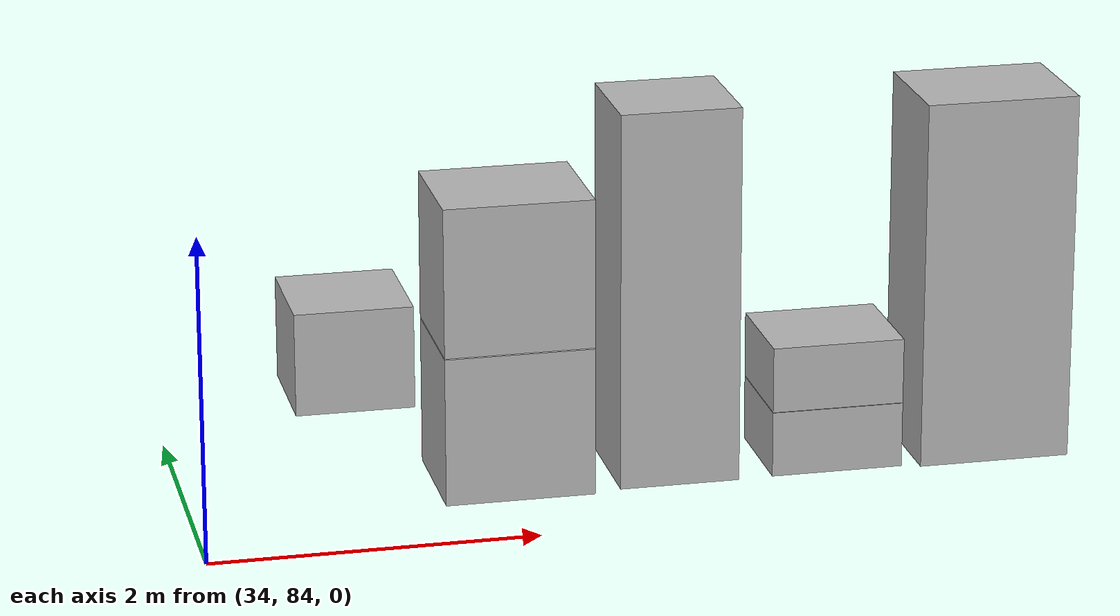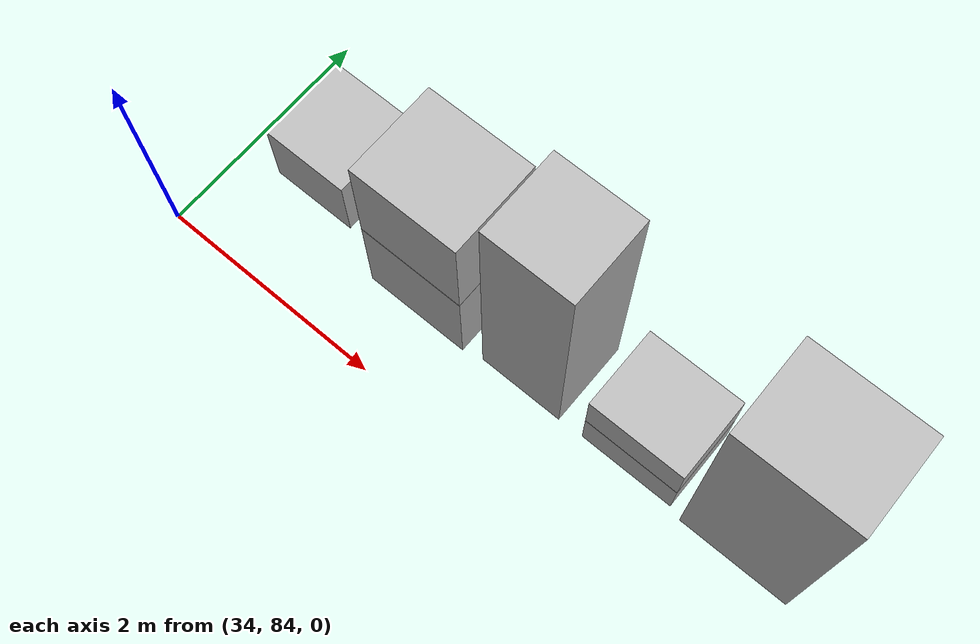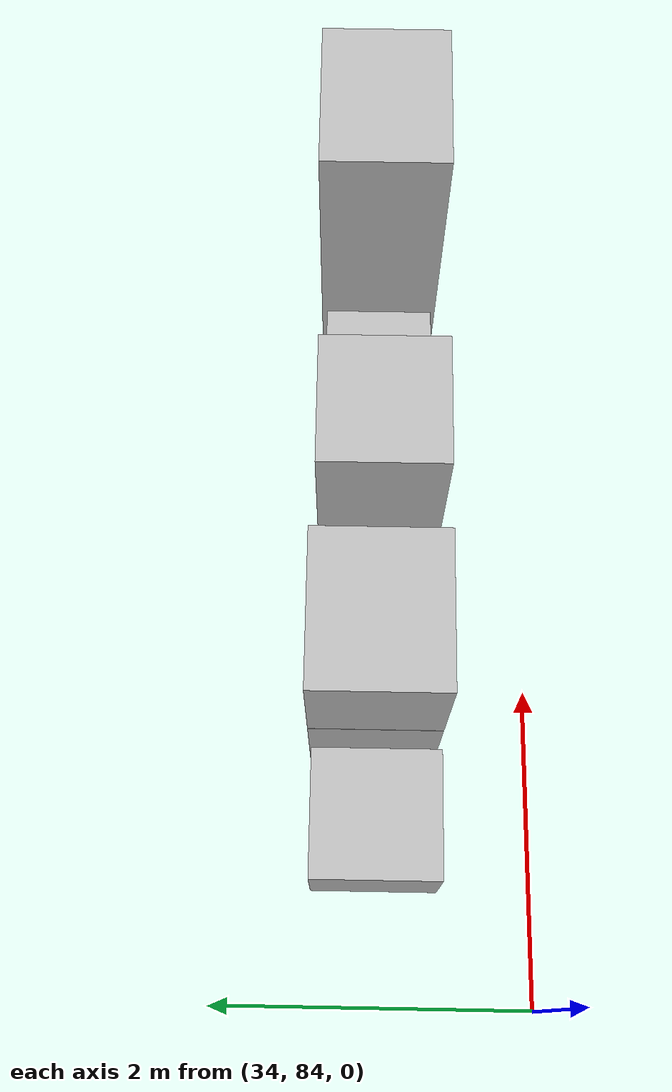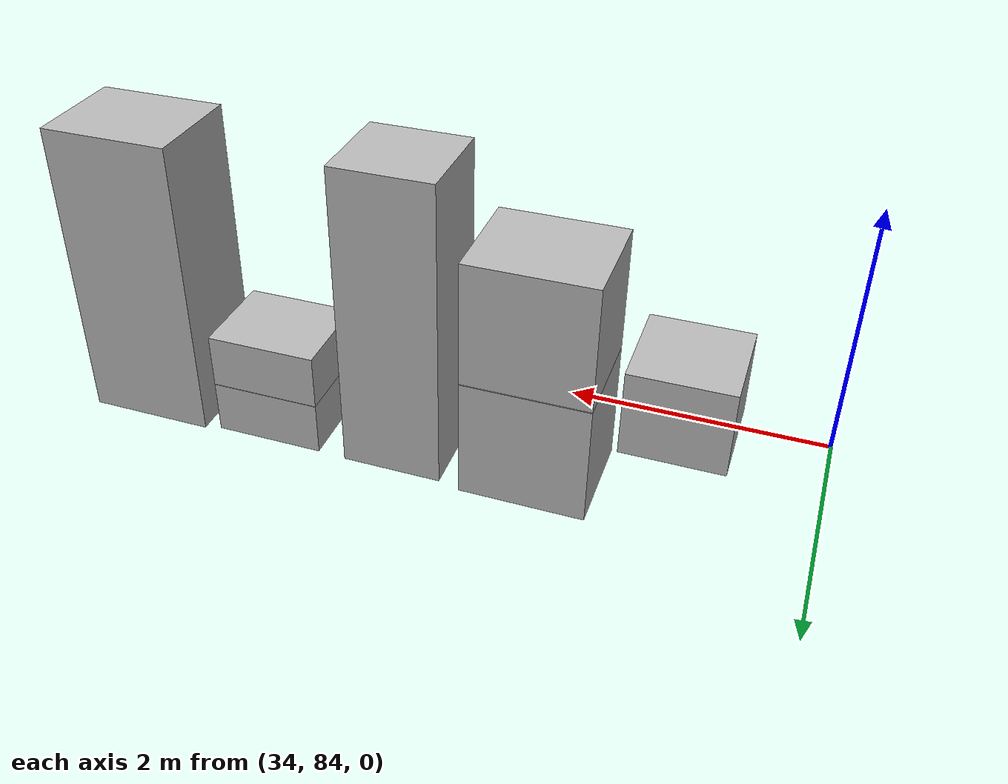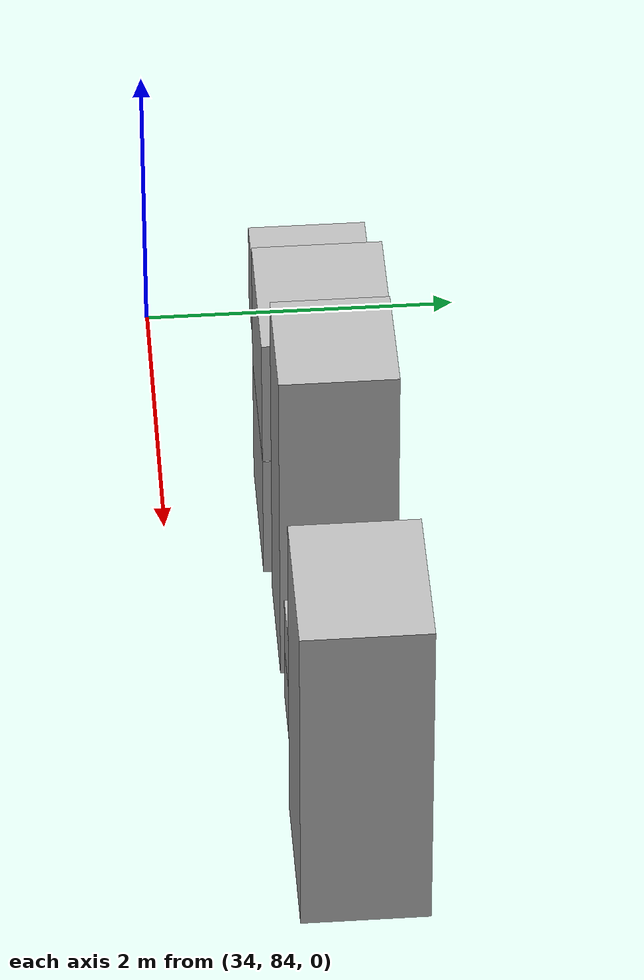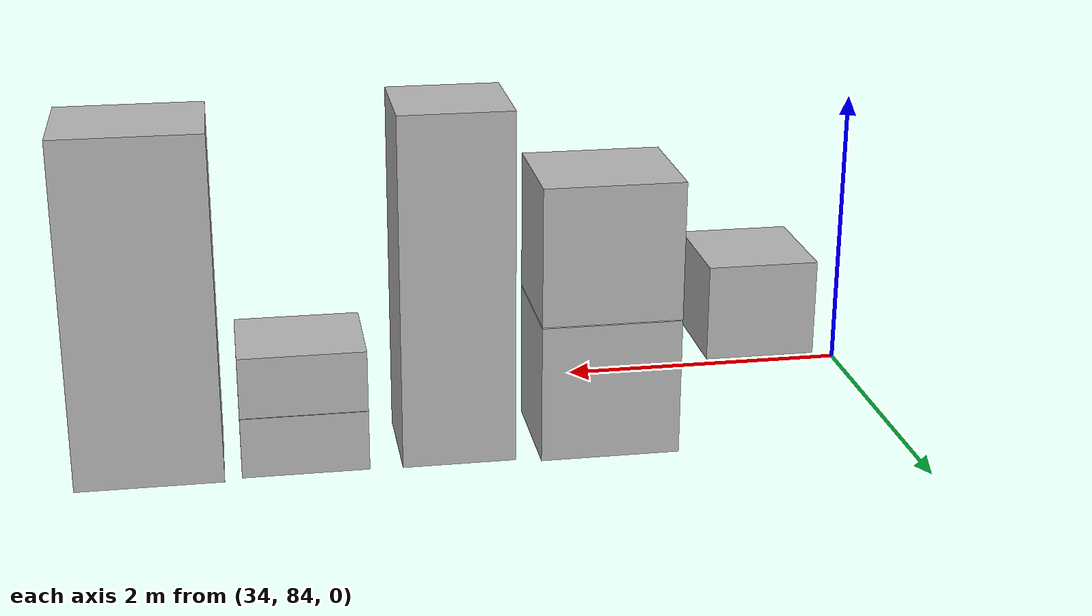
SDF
<sdf version="1.5">
 <world name="default">
  <model name="ground_plane">
   <static>true</static>
   <link name="link">
    <collision name="collision">
     <geometry><plane><normal>0 0 1</normal><size>250 250</size></plane></geometry>
     <surface><friction><ode><mu>1</mu><mu2>1</mu2></ode></friction></surface>
    </collision>
    <visual name="grass">
     <cast_shadows>false</cast_shadows>
     <geometry><mesh><uri>file://grass_plane/meshes/grass_plane.dae</uri></mesh></geometry>
    </visual>
   </link>
  </model>
  <model name="Cardboard_box_top_235">
   <link name="link_0">
    <pose>35 85 0.638882129248 0 0 0</pose>
    <inertial>
     <mass>1</mass>
     <inertia>
      <ixx>0.166667</ixx>
      <ixy>0</ixy>
      <ixz>0</ixz>
      <iyy>0.166667</iyy>
      <iyz>0</iyz>
      <izz>0.166667</izz>
     </inertia>
    </inertial>
    <collision name="collision">
     <geometry>
      <mesh>
       <uri>model://Cardboard_box/meshes/cardboard_box.dae</uri>
       <scale>1.81465931483 1.85825643379 1.59720532312</scale>
      </mesh>
     </geometry>
    </collision>
    <visual name="visual">
     <geometry>
      <mesh>
       <uri>model://Cardboard_box/meshes/cardboard_box.dae</uri>
       <scale>1.81465931483 1.85825643379 1.59720532312</scale>
      </mesh>
     </geometry>
    </visual>
   </link>
   <static>1</static>
  </model>
  <model name="Cardboard_box_236">
   <link name="link_0">
    <pose>36 85 0 0 0 0</pose>
    <inertial>
     <mass>1</mass>
     <inertia>
      <ixx>0.166667</ixx>
      <ixy>0</ixy>
      <ixz>0</ixz>
      <iyy>0.166667</iyy>
      <iyz>0</iyz>
      <izz>0.166667</izz>
     </inertia>
    </inertial>
    <collision name="collision">
     <geometry>
      <mesh>
       <uri>model://Cardboard_box/meshes/cardboard_box.dae</uri>
       <scale>2.33107672037 2.02968868565 2.35067340735</scale>
      </mesh>
     </geometry>
    </collision>
    <visual name="visual">
     <geometry>
      <mesh>
       <uri>model://Cardboard_box/meshes/cardboard_box.dae</uri>
       <scale>2.33107672037 2.02968868565 2.35067340735</scale>
      </mesh>
     </geometry>
    </visual>
   </link>
   <static>1</static>
  </model>
  <model name="Cardboard_box_top_236">
   <link name="link_0">
    <pose>36 85 0.940269362941 0 0 0</pose>
    <inertial>
     <mass>1</mass>
     <inertia>
      <ixx>0.166667</ixx>
      <ixy>0</ixy>
      <ixz>0</ixz>
      <iyy>0.166667</iyy>
      <iyz>0</iyz>
      <izz>0.166667</izz>
     </inertia>
    </inertial>
    <collision name="collision">
     <geometry>
      <mesh>
       <uri>model://Cardboard_box/meshes/cardboard_box.dae</uri>
       <scale>2.33107672037 2.02968868565 2.35067340735</scale>
      </mesh>
     </geometry>
    </collision>
    <visual name="visual">
     <geometry>
      <mesh>
       <uri>model://Cardboard_box/meshes/cardboard_box.dae</uri>
       <scale>2.33107672037 2.02968868565 2.35067340735</scale>
      </mesh>
     </geometry>
    </visual>
   </link>
   <static>1</static>
  </model>
  <model name="Cardboard_box_237">
   <link name="link_0">
    <pose>37 85 0 0 0 0</pose>
    <inertial>
     <mass>1</mass>
     <inertia>
      <ixx>0.166667</ixx>
      <ixy>0</ixy>
      <ixz>0</ixz>
      <iyy>0.166667</iyy>
      <iyz>0</iyz>
      <izz>0.166667</izz>
     </inertia>
    </inertial>
    <collision name="collision">
     <geometry>
      <mesh>
       <uri>model://Cardboard_box/meshes/cardboard_box.dae</uri>
       <scale>1.87676821707 1.81191534616 5.9768382561</scale>
      </mesh>
     </geometry>
    </collision>
    <visual name="visual">
     <geometry>
      <mesh>
       <uri>model://Cardboard_box/meshes/cardboard_box.dae</uri>
       <scale>1.87676821707 1.81191534616 5.9768382561</scale>
      </mesh>
     </geometry>
    </visual>
   </link>
   <static>1</static>
  </model>
  <model name="Cardboard_box_238">
   <link name="link_0">
    <pose>38 85 0 0 0 0</pose>
    <inertial>
     <mass>1</mass>
     <inertia>
      <ixx>0.166667</ixx>
      <ixy>0</ixy>
      <ixz>0</ixz>
      <iyy>0.166667</iyy>
      <iyz>0</iyz>
      <izz>0.166667</izz>
     </inertia>
    </inertial>
    <collision name="collision">
     <geometry>
      <mesh>
       <uri>model://Cardboard_box/meshes/cardboard_box.dae</uri>
       <scale>2.07960267065 1.75297256981 1.0380528736</scale>
      </mesh>
     </geometry>
    </collision>
    <visual name="visual">
     <geometry>
      <mesh>
       <uri>model://Cardboard_box/meshes/cardboard_box.dae</uri>
       <scale>2.07960267065 1.75297256981 1.0380528736</scale>
      </mesh>
     </geometry>
    </visual>
   </link>
   <static>1</static>
  </model>
  <model name="Cardboard_box_top_238">
   <link name="link_0">
    <pose>38 85 0.41522114944 0 0 0</pose>
    <inertial>
     <mass>1</mass>
     <inertia>
      <ixx>0.166667</ixx>
      <ixy>0</ixy>
      <ixz>0</ixz>
      <iyy>0.166667</iyy>
      <iyz>0</iyz>
      <izz>0.166667</izz>
     </inertia>
    </inertial>
    <collision name="collision">
     <geometry>
      <mesh>
       <uri>model://Cardboard_box/meshes/cardboard_box.dae</uri>
       <scale>2.07960267065 1.75297256981 1.0380528736</scale>
      </mesh>
     </geometry>
    </collision>
    <visual name="visual">
     <geometry>
      <mesh>
       <uri>model://Cardboard_box/meshes/cardboard_box.dae</uri>
       <scale>2.07960267065 1.75297256981 1.0380528736</scale>
      </mesh>
     </geometry>
    </visual>
   </link>
   <static>1</static>
  </model>
  <model name="Cardboard_box_239">
   <link name="link_0">
    <pose>39 85 0 0 0 0</pose>
    <inertial>
     <mass>1</mass>
     <inertia>
      <ixx>0.166667</ixx>
      <ixy>0</ixy>
      <ixz>0</ixz>
      <iyy>0.166667</iyy>
      <iyz>0</iyz>
      <izz>0.166667</izz>
     </inertia>
    </inertial>
    <collision name="collision">
     <geometry>
      <mesh>
       <uri>model://Cardboard_box/meshes/cardboard_box.dae</uri>
       <scale>2.39421773189 1.94589635194 5.84132532166</scale>
      </mesh>
     </geometry>
    </collision>
    <visual name="visual">
     <geometry>
      <mesh>
       <uri>model://Cardboard_box/meshes/cardboard_box.dae</uri>
       <scale>2.39421773189 1.94589635194 5.84132532166</scale>
      </mesh>
     </geometry>
    </visual>
   </link>
   <static>1</static>
  </model>
 </world>
</sdf>
